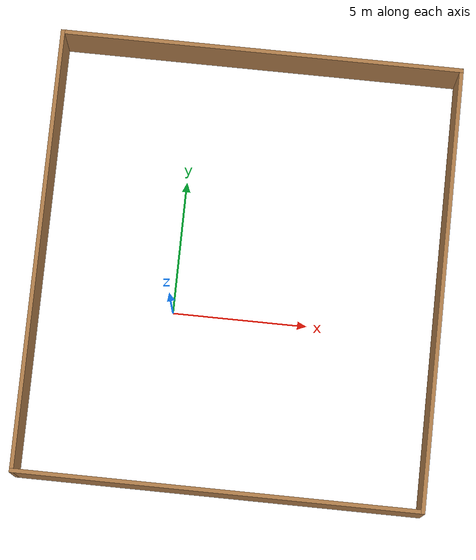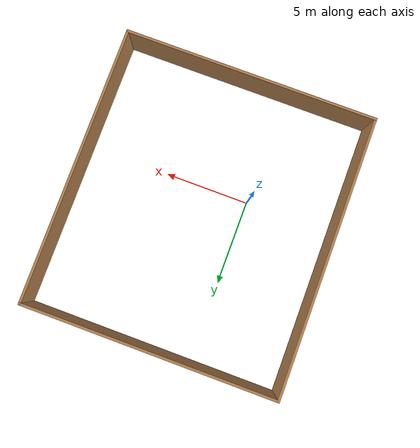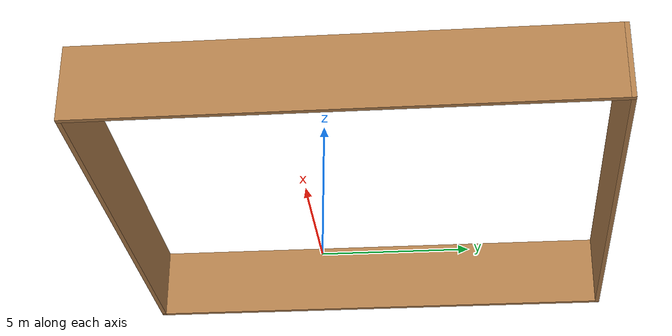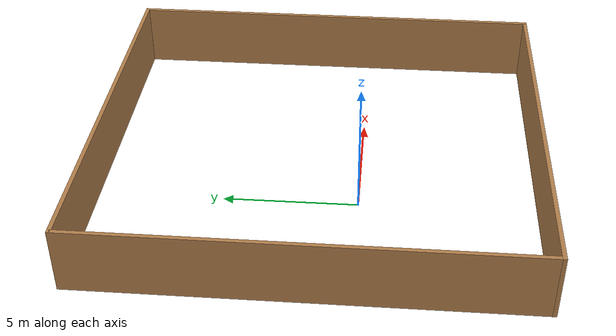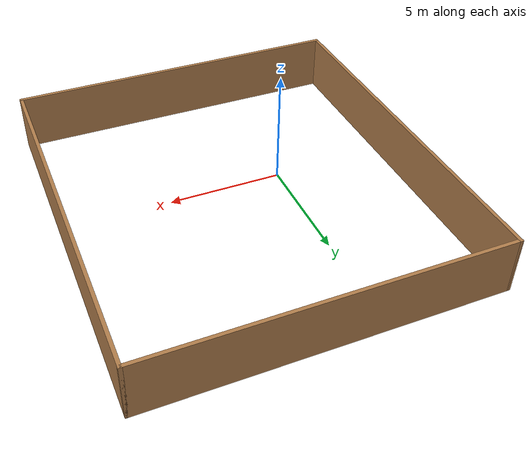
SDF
<?xml version='1.0'?>
<sdf version='1.7'>
  <model name='duan'>
    <pose>2.33378 1.57305 0 0 -0 0</pose>
    <link name='Wall_10'>
      <collision name='Wall_10_Collision'>
        <geometry>
          <box>
            <size>16.5 0.15 2.5</size>
          </box>
        </geometry>
        <pose>0 0 1.25 0 -0 0</pose>
      </collision>
      <visual name='Wall_10_Visual'>
        <pose>0 0 1.25 0 -0 0</pose>
        <geometry>
          <box>
            <size>16.5 0.15 2.5</size>
          </box>
        </geometry>
        <material>
          <script>
            <uri>file://media/materials/scripts/gazebo.material</uri>
            <name>Gazebo/Wood</name>
          </script>
          <ambient>1 1 1 1</ambient>
        </material>
        <meta>
          <layer>0</layer>
        </meta>
      </visual>
      <pose>-7.425 -0 0 0 -0 1.5708</pose>
    </link>
    <link name='Wall_12'>
      <collision name='Wall_12_Collision'>
        <geometry>
          <box>
            <size>15 0.15 2.5</size>
          </box>
        </geometry>
        <pose>0 0 1.25 0 -0 0</pose>
      </collision>
      <visual name='Wall_12_Visual'>
        <pose>0 0 1.25 0 -0 0</pose>
        <geometry>
          <box>
            <size>15 0.15 2.5</size>
          </box>
        </geometry>
        <material>
          <script>
            <uri>file://media/materials/scripts/gazebo.material</uri>
            <name>Gazebo/Wood</name>
          </script>
          <ambient>1 1 1 1</ambient>
        </material>
        <meta>
          <layer>0</layer>
        </meta>
      </visual>
      <pose>0 8.175 0 0 -0 0</pose>
    </link>
    <link name='Wall_3'>
      <collision name='Wall_3_Collision'>
        <geometry>
          <box>
            <size>16.5 0.15 2.5</size>
          </box>
        </geometry>
        <pose>0 0 1.25 0 -0 0</pose>
      </collision>
      <visual name='Wall_3_Visual'>
        <pose>0 0 1.25 0 -0 0</pose>
        <geometry>
          <box>
            <size>16.5 0.15 2.5</size>
          </box>
        </geometry>
        <material>
          <script>
            <uri>file://media/materials/scripts/gazebo.material</uri>
            <name>Gazebo/Wood</name>
          </script>
          <ambient>1 1 1 1</ambient>
        </material>
        <meta>
          <layer>0</layer>
        </meta>
      </visual>
      <pose>7.425 -0 0 0 -0 1.5708</pose>
    </link>
    <link name='Wall_8'>
      <collision name='Wall_8_Collision'>
        <geometry>
          <box>
            <size>15 0.15 2.5</size>
          </box>
        </geometry>
        <pose>0 0 1.25 0 -0 0</pose>
      </collision>
      <visual name='Wall_8_Visual'>
        <pose>0 0 1.25 0 -0 0</pose>
        <geometry>
          <box>
            <size>15 0.15 2.5</size>
          </box>
        </geometry>
        <material>
          <script>
            <uri>file://media/materials/scripts/gazebo.material</uri>
            <name>Gazebo/Wood</name>
          </script>
          <ambient>1 1 1 1</ambient>
        </material>
        <meta>
          <layer>0</layer>
        </meta>
      </visual>
      <pose>0 -8.175 0 0 -0 3.14159</pose>
    </link>
    <static>1</static>
  </model>
</sdf>
